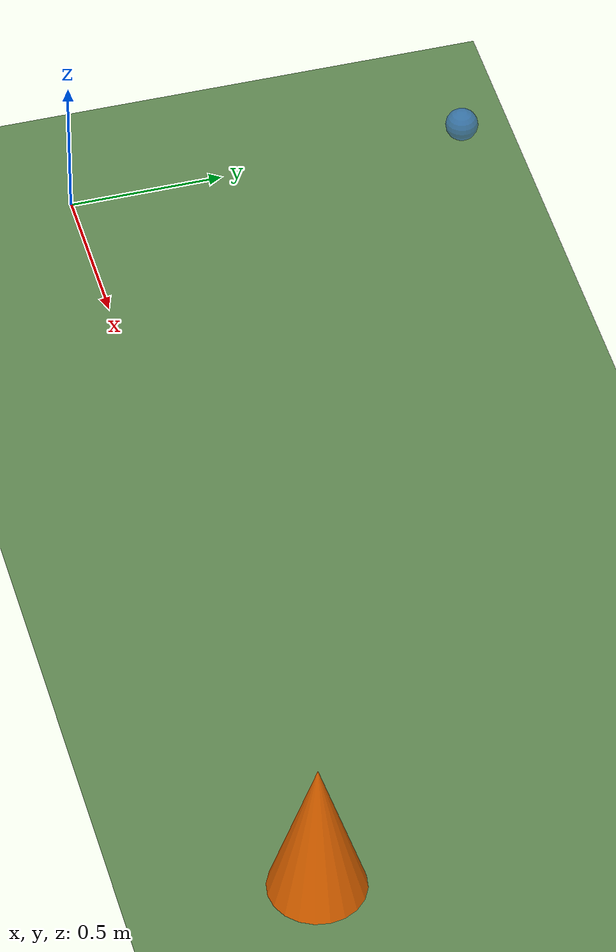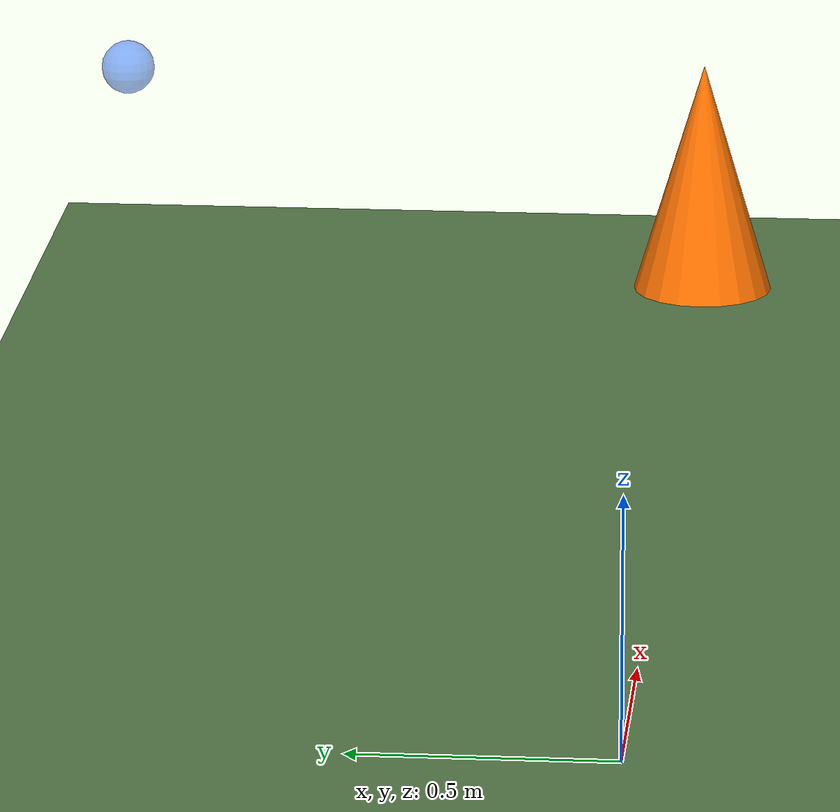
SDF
<?xml version="1.0"?>
<sdf version="1.10">
  <world name="pluto_legacy">
    <physics name="fixed_1ms" type="dart">
      <max_step_size>0.001</max_step_size>
      <real_time_factor>1.0</real_time_factor>
    </physics>
    <gravity>0 0 -9.81</gravity>

    <plugin filename="gz-sim-physics-system" name="gz::sim::systems::Physics"/>
    <plugin filename="gz-sim-user-commands-system"
            name="gz::sim::systems::UserCommands"/>
    <plugin filename="gz-sim-scene-broadcaster-system"
            name="gz::sim::systems::SceneBroadcaster"/>
    <plugin filename="gz-sim-imu-system" name="gz::sim::systems::Imu"/>

    <scene>
      <ambient>0.6 0.6 0.6 1</ambient>
      <background>0.75 0.85 0.95 1</background>
      <shadows>false</shadows>
    </scene>

    <light type="directional" name="sun">
      <cast_shadows>false</cast_shadows>
      <pose>0 0 10 0 0 0</pose>
      <diffuse>0.9 0.9 0.9 1</diffuse>
      <specular>0.2 0.2 0.2 1</specular>
      <direction>-0.5 0.1 -0.9</direction>
    </light>

    <model name="ground_plane">
      <static>true</static>
      <link name="link">
        <collision name="collision">
          <geometry><plane><normal>0 0 1</normal><size>100 100</size></plane></geometry>
        </collision>
        <visual name="visual">
          <geometry><plane><normal>0 0 1</normal><size>100 100</size></plane></geometry>
          <material>
            <ambient>0.35 0.5 0.3 1</ambient>
            <diffuse>0.35 0.5 0.3 1</diffuse>
          </material>
        </visual>
      </link>
    </model>

    <model name="reference_cone">
      <static>true</static>
      <pose>3 0 0.25 0 0 0</pose>
      <link name="link">
        <collision name="collision">
          <geometry><cone><radius>0.15</radius><length>0.5</length></cone></geometry>
        </collision>
        <visual name="visual">
          <geometry><cone><radius>0.15</radius><length>0.5</length></cone></geometry>
          <material>
            <ambient>1 0.45 0 1</ambient>
            <diffuse>1 0.45 0 1</diffuse>
          </material>
        </visual>
      </link>
    </model>

    <model name="position_hold_target_marker">
      <static>true</static>
      <pose>1 1 1 0 0 0</pose>
      <link name="link">
        <visual name="visual">
          <geometry><sphere><radius>0.05</radius></sphere></geometry>
          <transparency>0.5</transparency>
          <material>
            <ambient>0.1 0.4 1 1</ambient>
            <diffuse>0.1 0.4 1 1</diffuse>
          </material>
        </visual>
      </link>
    </model>
  </world>
</sdf>
